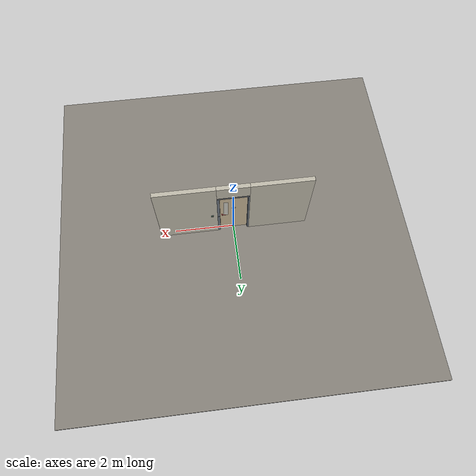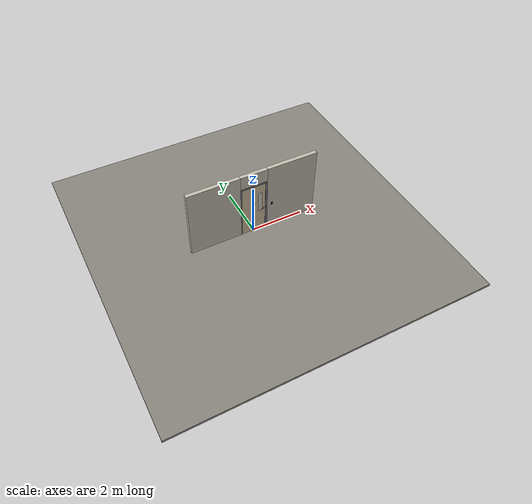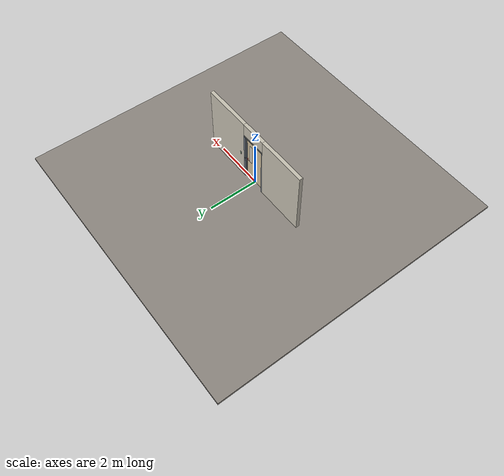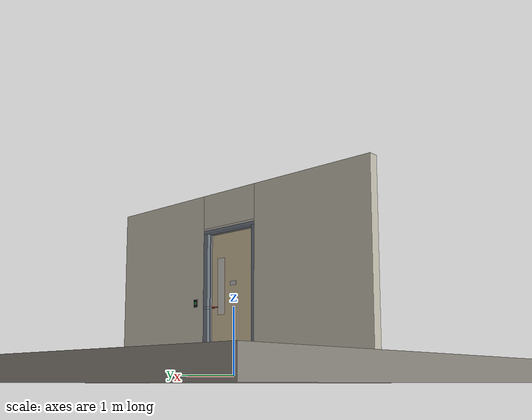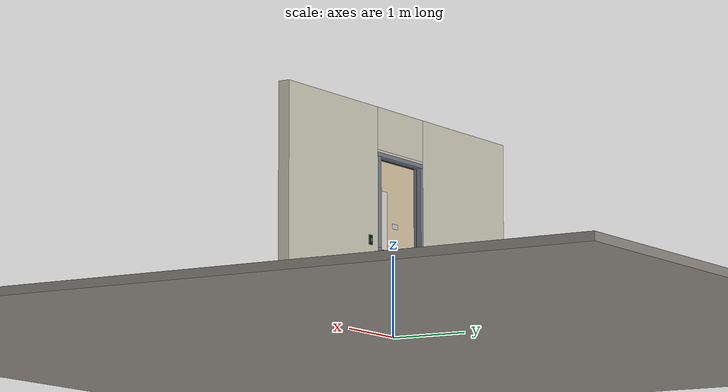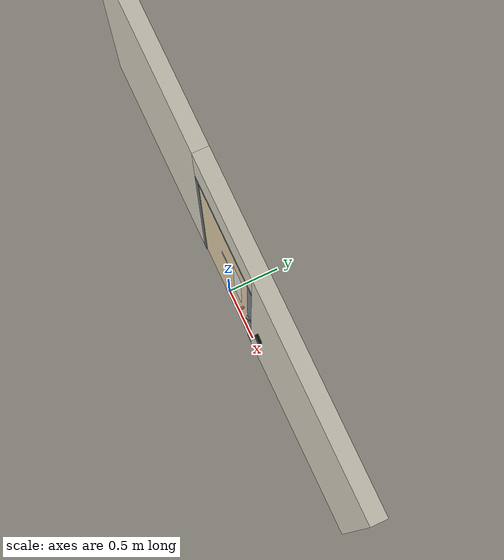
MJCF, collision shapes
<?xml version="1.0" ?>
<mujoco model="db0172_swing_single_full">
  <compiler angle="radian" meshdir="../../hardware" texturedir="../../textures" autolimits="true" inertiafromgeom="false"/>
  <option timestep="0.002" integrator="implicitfast" cone="elliptic" impratio="10" noslip_iterations="3">
    <flag multiccd="enable"/>
  </option>
  <size memory="16M"/>
  <default>
    <geom condim="4" solref="0.005 1" solimp="0.95 0.99 0.001"/>
    <joint solreflimit="0.005 1" solimplimit="0.95 0.99 0.001"/>
    <tendon solreflimit="0.005 1"/>
    <equality solref="0.002 1"/>
  </default>
  <visual>
    <headlight ambient="0.4 0.4 0.4" diffuse="0.7 0.7 0.7" specular="0.2 0.2 0.2"/>
    <quality shadowsize="4096"/>
    <map znear="0.01" zfar="60"/>
  </visual>
  <asset>
    <mesh name="hinge_e22b26c0c1" file="hinge_e22b26c0c1.obj"/>
    <mesh name="hinge_jamb_e1d088f8dc" file="hinge_jamb_e1d088f8dc.obj"/>
    <mesh name="lever_9f02b544cf" file="lever_9f02b544cf.obj"/>
    <material name="mat_floor" rgba="0.55 0.53 0.5 1" specular="0.2" shininess="0.15" reflectance="0"/>
    <material name="mat_wall" rgba="0.78 0.76 0.7 1" specular="0.2" shininess="0.1" reflectance="0"/>
    <material name="mat_leaf" rgba="0.82 0.75 0.62 1" specular="0.2" shininess="0.63" reflectance="0"/>
    <material name="mat_glass" rgba="0.9 0.93 0.95 0.6" specular="0.2" shininess="0.5" reflectance="0.1"/>
    <material name="mat_hinge" rgba="0.65 0.66 0.68 1" specular="0.74" shininess="0.5" reflectance="0.36"/>
    <material name="mat_op_nickel_satin" rgba="0.72 0.7 0.66 1" specular="0.8" shininess="0.65" reflectance="0.4"/>
    <material name="mat_trim" rgba="0.85 0.66 0.3 1" specular="0.8" shininess="0.75" reflectance="0.4"/>
    <material name="mat_bolt" rgba="0.85 0.66 0.3 1" specular="0.8" shininess="0.75" reflectance="0.4"/>
    <material name="mat_frame" rgba="0.45 0.48 0.52 1" specular="0.32" shininess="0.6" reflectance="0.08"/>
    <material name="mat_seal" rgba="0.1 0.1 0.1 1" specular="0.2" shininess="0.1" reflectance="0"/>
    <material name="mat_sign" rgba="0.75 0.76 0.77 1" specular="0.8" shininess="0.65" reflectance="0.4"/>
    <material name="mat_wallreader" rgba="0.05 0.05 0.05 1" specular="0.38" shininess="0.3" reflectance="0.12"/>
    <material name="mat_rex" rgba="0.1 0.6 0.2 1" specular="0.2" shininess="0.6" reflectance="0"/>
    <texture name="skybox" type="skybox" builtin="gradient" rgb1="0.6 0.7 0.85" rgb2="0.9 0.92 0.95" width="256" height="256"/>
  </asset>
  <worldbody>
    <light name="sun" pos="1.5 -2.5 4" dir="-0.3 0.5 -0.8" directional="true" diffuse="0.8 0.8 0.8" specular="0.3 0.3 0.3" castshadow="true"/>
    <light name="fill" pos="-1.5 2.5 3" dir="0.3 -0.5 -0.7" directional="true" diffuse="0.35 0.35 0.4" castshadow="false"/>
    <camera name="robot_view" pos="0 -2.594313 1.812087" xyaxes="1 0 0 0 0.26963 0.962964" fovy="52"/>
    <camera name="far_view" pos="0 2.681312 1.812087" xyaxes="-1 0 0 0 -0.26963 0.962964" fovy="52"/>
    <camera name="iso" pos="2.004737 -2.172262 2.234138" xyaxes="0.741536 0.670913 0 -0.242917 0.268487 0.932151" fovy="46"/>
    <camera name="detail_handle" pos="0.4665 -0.877 1.296" xyaxes="0.97561 0.219512 0 -0.070934 0.315262 0.94635" fovy="38"/>
    <geom name="floor" type="box" size="6 6 0.05" pos="0 0 -0.05" material="mat_floor" group="0" contype="1" conaffinity="1" friction="0.8 0.005 0.0001" density="2400"/>
    <geom name="wall_left" type="box" size="0.99475 0.0725 1.3735" pos="-1.50525 0.0435 1.3735" material="mat_wall" group="0" contype="1" conaffinity="1" friction="0.6 0.005 0.0001" density="800"/>
    <geom name="wall_right" type="box" size="0.97975 0.0725 1.3735" pos="1.52025 0.0435 1.3735" material="mat_wall" group="0" contype="1" conaffinity="1" friction="0.6 0.005 0.0001" density="800"/>
    <geom name="wall_header" type="box" size="0.5255 0.0725 0.26" pos="0.015 0.0435 2.487" material="mat_wall" group="0" contype="1" conaffinity="1" friction="0.6 0.005 0.0001" density="800"/>
    <geom name="hinge_0_jamb" type="mesh" mesh="hinge_jamb_e1d088f8dc" pos="-0.4575 -0.029 0.259" material="mat_hinge" group="1" contype="0" conaffinity="0" density="7850"/>
    <geom name="hinge_1_jamb" type="mesh" mesh="hinge_jamb_e1d088f8dc" pos="-0.4575 -0.029 1.076" material="mat_hinge" group="1" contype="0" conaffinity="0" density="7850"/>
    <geom name="hinge_2_jamb" type="mesh" mesh="hinge_jamb_e1d088f8dc" pos="-0.4575 -0.029 1.963" material="mat_hinge" group="1" contype="0" conaffinity="0" density="7850"/>
    <geom name="jamb_hinge" type="box" size="0.025 0.0725 1.0735" pos="-0.4855 0.0435 1.0735" material="mat_frame" group="0" contype="1" conaffinity="1" friction="0.6 0.005 0.0001" density="300"/>
    <geom name="strike_1016_wall_n" type="box" size="0.04 0.05325 0.0183" pos="0.5005 0.06275 1.016" material="mat_frame" group="0" contype="1" conaffinity="1" friction="0.6 0.005 0.0001" density="300"/>
    <geom name="strike_1016_wall_p" type="box" size="0.04 0.008 0.0183" pos="0.5005 -0.0175 1.016" material="mat_frame" group="0" contype="1" conaffinity="1" friction="0.6 0.005 0.0001" density="300"/>
    <geom name="strike_1016_ramp" type="box" size="0.04 0.018028 0.0183" pos="0.503782 -0.018312 1.016" quat="0.957092 0 0 0.289784" material="mat_frame" group="0" contype="1" conaffinity="1" friction="0.12 0.005 0.0001" density="300"/>
    <geom name="strike_1016_back" type="box" size="0.0285 0.0095 0.0183" pos="0.512 0 1.016" material="mat_frame" group="0" contype="1" conaffinity="1" friction="0.6 0.005 0.0001" density="300"/>
    <geom name="jamb_strike_0" type="box" size="0.04 0.0725 0.49885" pos="0.5005 0.0435 0.49885" material="mat_frame" group="0" contype="1" conaffinity="1" friction="0.6 0.005 0.0001" density="300"/>
    <geom name="jamb_strike_1" type="box" size="0.04 0.0725 0.55635" pos="0.5005 0.0435 1.59065" material="mat_frame" group="0" contype="1" conaffinity="1" friction="0.6 0.005 0.0001" density="300"/>
    <geom name="jamb_head" type="box" size="0.5255 0.0725 0.025" pos="0.015 0.0435 2.172" material="mat_frame" group="0" contype="1" conaffinity="1" friction="0.6 0.005 0.0001" density="300"/>
    <geom name="head_stud" type="box" size="0.5255 0.0725 0.015" pos="0.015 0.0435 2.212" material="mat_wall" group="0" contype="1" conaffinity="1" friction="0.6 0.005 0.0001" density="500"/>
    <geom name="stop_hinge" type="box" size="0.0055 0.016 1.0735" pos="-0.455 0.0385 1.0735" material="mat_frame" group="0" contype="1" conaffinity="1" friction="0.6 0.005 0.0001" density="300"/>
    <geom name="stop_strike" type="box" size="0.0055 0.016 1.0735" pos="0.455 0.0385 1.0735" material="mat_frame" group="0" contype="1" conaffinity="1" friction="0.6 0.005 0.0001" density="300"/>
    <geom name="stop_head" type="box" size="0.4605 0.016 0.0055" pos="0 0.0385 2.1415" material="mat_frame" group="0" contype="1" conaffinity="1" friction="0.6 0.005 0.0001" density="300"/>
    <geom name="seal_hinge" type="box" size="0.004 0.002 1.0735" pos="-0.4575 0.024 1.0735" material="mat_seal" group="1" contype="0" conaffinity="0" density="1100"/>
    <geom name="seal_strike" type="box" size="0.004 0.002 1.0735" pos="0.4575 0.024 1.0735" material="mat_seal" group="1" contype="0" conaffinity="0" density="1100"/>
    <geom name="seal_head" type="box" size="0.4405 0.002 0.008" pos="0 0.024 2.135" material="mat_seal" group="1" contype="0" conaffinity="0" density="1100"/>
    <geom name="wall_reader" type="box" size="0.04 0.015 0.06" pos="0.7105 -0.044 1.1" material="mat_wallreader" group="0" contype="1" conaffinity="1" friction="0.6 0.005 0.0001" density="1000"/>
    <geom name="rex_plate" type="box" size="0.04 0.003 0.06" pos="0.7105 0.119 1.1" material="mat_wallreader" group="1" contype="0" conaffinity="0" density="1000"/>
    <site name="approach_point" pos="0 -1.5 0" quat="1 0 0 0" size="0.05" rgba="0.2 0.9 0.2 0.5" group="4"/>
    <site name="goal_point" pos="0 1.5 0" quat="1 0 0 0" size="0.05" rgba="0.2 0.9 0.2 0.5" group="4"/>
    <site name="door_plane_center" pos="0 0 1.0735" quat="1 0 0 0" size="0.02" rgba="0.2 0.9 0.2 0.5" group="4"/>
    <body name="rex_button" pos="0.7105 0.122 1.1">
      <inertial pos="0 0.004 0" mass="0.010053" quat="0 0 0.707107 -0.707107" diaginertia="0.000001059 0.000001059 0.000002011"/>
      <joint name="rex_button_slide" type="slide" axis="0 -1 0" limited="true" range="0 0.004" damping="1" stiffness="1500" springref="-0.004" armature="0.1"/>
      <geom name="rex_button_geom" type="cylinder" size="0.02 0.004" pos="0 0.004 0" quat="0.707107 -0.707107 0 0" material="mat_rex" group="0" contype="1" conaffinity="1" friction="0.6 0.005 0.0001" density="1000"/>
    </body>
    <body name="leaf" pos="-0.4605 0 0">
      <inertial pos="0.454005 -0.000241 1.077523" mass="58.942582" quat="-0.49973 0.500489 -0.499503 -0.500276" diaginertia="4.207409587 22.379552674 26.567157145"/>
      <joint name="leaf_hinge" type="hinge" axis="0 0 -1" pos="0.003 -0.029 0" limited="true" range="0 1.570796" solreflimit="0.02 1" damping="0.318966" frictionloss="0.925773" armature="0.02"/>
      <geom name="leaf_slab" type="box" size="0.457 0.022 1.067" pos="0.46 0 1.076" material="mat_leaf" group="0" contype="1" conaffinity="1" friction="0.4 0.005 0.0001" density="1"/>
      <geom name="leaf_glass_0" type="box" size="0.075 0.0228 0.4268" pos="0.71146 0 1.33208" material="mat_glass" group="1" contype="0" conaffinity="0" density="1"/>
      <geom name="hinge_0" type="mesh" mesh="hinge_e22b26c0c1" pos="0.003 -0.029 0.259" material="mat_hinge" group="1" contype="0" conaffinity="0" density="7850"/>
      <geom name="hinge_1" type="mesh" mesh="hinge_e22b26c0c1" pos="0.003 -0.029 1.076" material="mat_hinge" group="1" contype="0" conaffinity="0" density="7850"/>
      <geom name="hinge_2" type="mesh" mesh="hinge_e22b26c0c1" pos="0.003 -0.029 1.963" material="mat_hinge" group="1" contype="0" conaffinity="0" density="7850"/>
      <geom name="leaf_latch_bolt_faceplate" type="box" size="0.0006 0.014 0.0283" pos="0.9164 0 1.016" material="mat_bolt" group="1" contype="0" conaffinity="0" density="8500"/>
      <geom name="sign_push" type="box" size="0.06 0.001 0.03" pos="0.46 0.023 1.359" material="mat_sign" group="2" contype="0" conaffinity="0" density="7900"/>
      <geom name="sign_pull" type="box" size="0.06 0.001 0.03" pos="0.46 -0.023 1.359" material="mat_sign" group="2" contype="0" conaffinity="0" density="7900"/>
      <site name="leaf_edge_mid" pos="0.917 0 1.067" quat="1 0 0 0" size="0.02" rgba="0.2 0.9 0.2 0.5" group="4"/>
      <body name="leaf_handle" pos="0.847 0 1.016">
        <inertial pos="-0.028544 0 0" mass="0.978187" quat="0 0.707107 0.707107 0" diaginertia="0.001772047 0.003604455 0.005198299"/>
        <joint name="leaf_handle_hinge" type="hinge" axis="0 -1 0" limited="true" range="0 0.96" damping="0.245624" frictionloss="0.048" stiffness="1.2" springref="-0.458333" armature="0.01"/>
        <geom name="leaf_handle_spindle" type="cylinder" size="0.006 0.03" pos="0 0 0" quat="0.707107 -0.707107 0 0" material="mat_op_nickel_satin" group="1" contype="0" conaffinity="0" density="7850"/>
        <geom name="leaf_handle_lever_n" type="mesh" mesh="lever_9f02b544cf" pos="0 -0.022 0" quat="0.707107 0.707107 0 0" material="mat_op_nickel_satin" group="1" contype="0" conaffinity="0" density="3000"/>
        <geom name="leaf_handle_lever_col_n" type="capsule" size="0.0095 0.053" pos="-0.0625 -0.077 0" quat="0.707107 0 -0.707107 0" material="mat_op_nickel_satin" group="3" contype="1" conaffinity="1" rgba="0.8 0.3 0.3 0.25" friction="0.7 0.01 0.0001" density="3000"/>
        <geom name="leaf_handle_hub_col_n" type="cylinder" size="0.012 0.022" pos="0 -0.052 0" quat="0.707107 -0.707107 0 0" material="mat_op_nickel_satin" group="3" contype="1" conaffinity="1" rgba="0.8 0.3 0.3 0.25" friction="0.6 0.005 0.0001" density="3000"/>
        <geom name="leaf_handle_lever_p" type="mesh" mesh="lever_9f02b544cf" pos="0 0.022 0" quat="-0.707107 0.707107 0 0" material="mat_op_nickel_satin" group="1" contype="0" conaffinity="0" density="3000"/>
        <geom name="leaf_handle_lever_col_p" type="capsule" size="0.0095 0.053" pos="-0.0625 0.077 0" quat="0.707107 0 -0.707107 0" material="mat_op_nickel_satin" group="3" contype="1" conaffinity="1" rgba="0.8 0.3 0.3 0.25" friction="0.7 0.01 0.0001" density="3000"/>
        <geom name="leaf_handle_hub_col_p" type="cylinder" size="0.012 0.022" pos="0 0.052 0" quat="0.707107 -0.707107 0 0" material="mat_op_nickel_satin" group="3" contype="1" conaffinity="1" rgba="0.8 0.3 0.3 0.25" friction="0.6 0.005 0.0001" density="3000"/>
        <site name="leaf_handle_grip_n" pos="-0.1 -0.077 0" quat="1 0 0 0" size="0.012" rgba="0.2 0.9 0.2 0.5" group="4"/>
        <site name="leaf_handle_grip_p" pos="-0.1 0.077 0" quat="1 0 0 0" size="0.012" rgba="0.2 0.9 0.2 0.5" group="4"/>
      </body>
      <body name="leaf_latch_bolt" pos="0.917 0 1.016">
        <inertial pos="-0.0055 0 0" mass="0.074627" quat="0.92388 -0.382683 0 0" diaginertia="0.000002271 0.000013255 0.000013255"/>
        <joint name="leaf_latch_bolt_slide" type="slide" axis="-1 0 0" limited="true" range="0 0.019" damping="2" frictionloss="0.3" stiffness="600" springref="-0.01" armature="0.1"/>
        <geom name="leaf_latch_bolt_capsule" type="capsule" size="0.008 0.0165" pos="-0.0055 0 0" quat="0.707107 0 0.707107 0" material="mat_bolt" group="0" contype="1" conaffinity="1" friction="0.2 0.005 0.0001" density="8500"/>
      </body>
    </body>
  </worldbody>
  <tendon>
    <fixed name="leaf_latch_bolt_coupling" limited="true" range="0 10">
      <joint joint="leaf_latch_bolt_slide" coef="1"/>
      <joint joint="leaf_handle_hinge" coef="-0.020879"/>
    </fixed>
  </tendon>
  <sensor>
    <jointpos name="leaf_hinge_pos" joint="leaf_hinge"/>
    <jointvel name="leaf_hinge_vel" joint="leaf_hinge"/>
    <jointpos name="leaf_handle_hinge_pos" joint="leaf_handle_hinge"/>
    <jointvel name="leaf_handle_hinge_vel" joint="leaf_handle_hinge"/>
    <jointpos name="leaf_latch_bolt_slide_pos" joint="leaf_latch_bolt_slide"/>
    <jointvel name="leaf_latch_bolt_slide_vel" joint="leaf_latch_bolt_slide"/>
    <jointpos name="rex_button_slide_pos" joint="rex_button_slide"/>
    <jointvel name="rex_button_slide_vel" joint="rex_button_slide"/>
  </sensor>
</mujoco>
